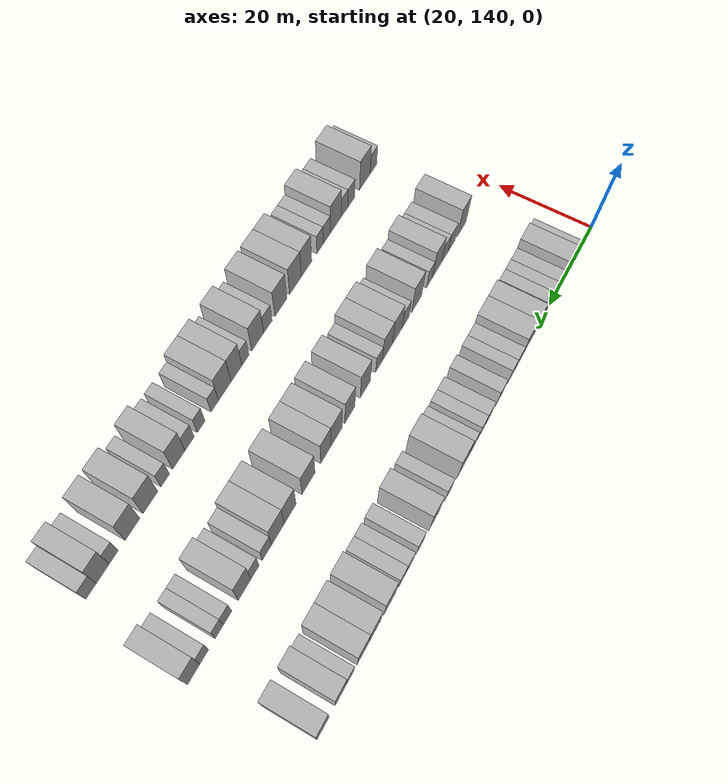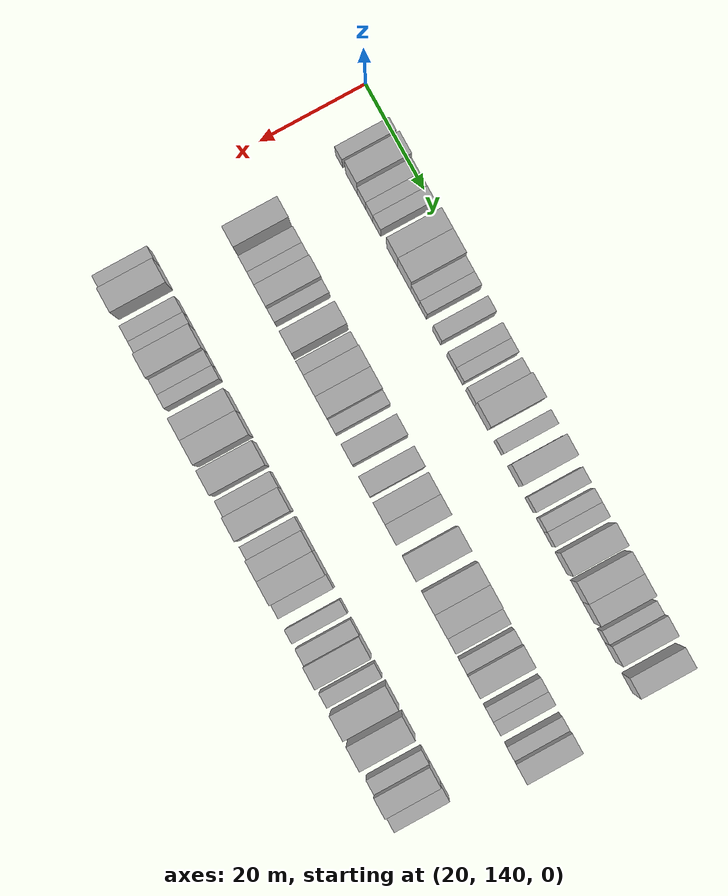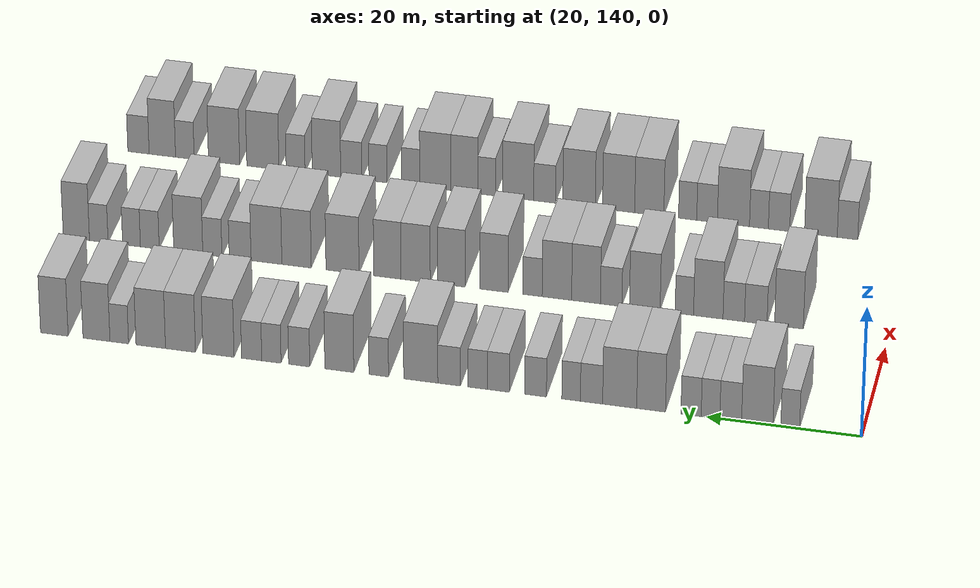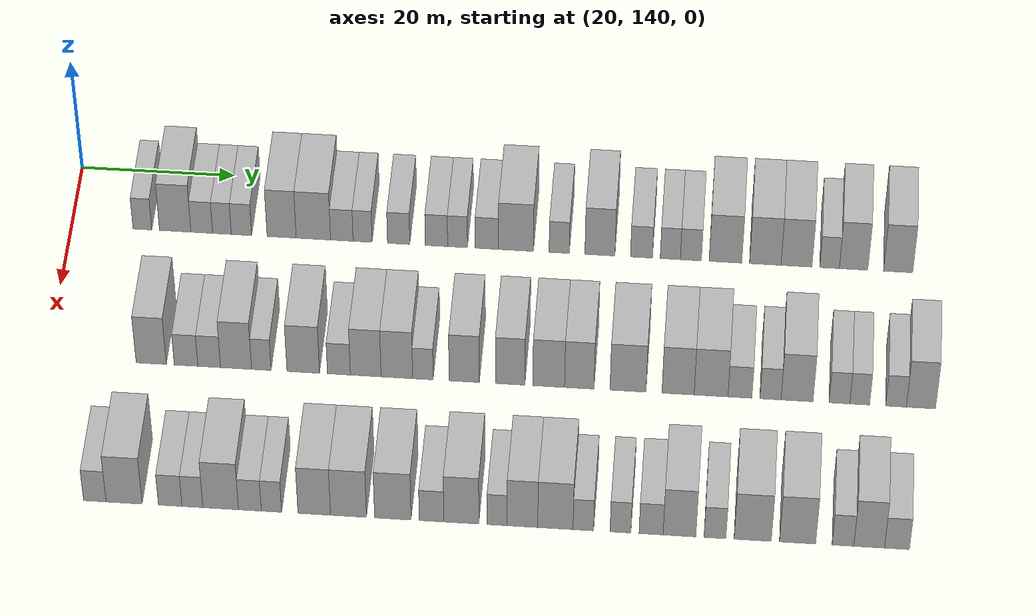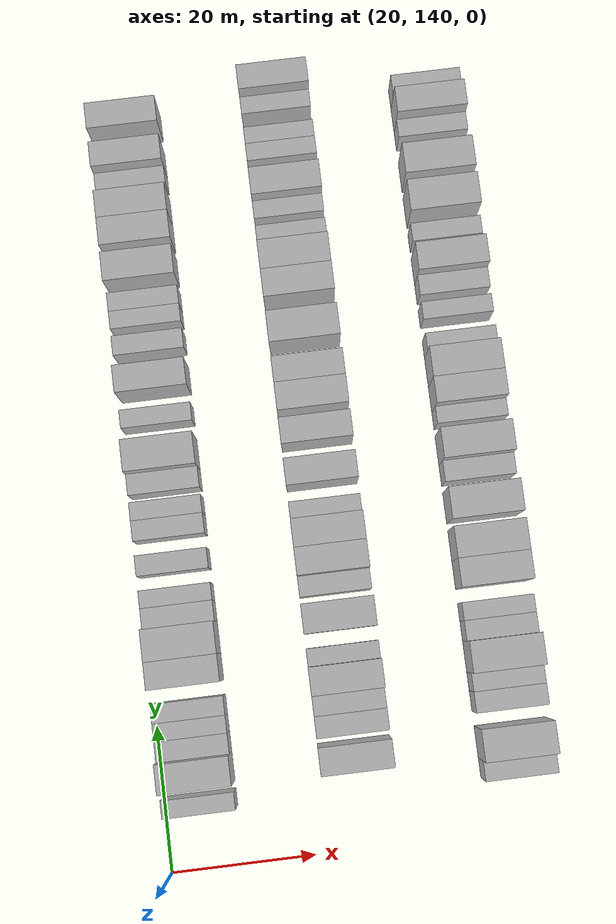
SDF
<sdf version="1.6">
 <world name="default">
  <model name="building_97">
   <static>1</static>
   <pose>25.0000 149.1740 0 0.000000 0.000000 0.000000</pose>
   <link name="link">
    <pose>0 0 3.00 0 0 0</pose>
    <collision name="collision"><geometry><box><size>10.0000 2.4247 6.0000</size></box></geometry></collision>
    <visual name="visual">
     <cast_shadows>0</cast_shadows>
     <geometry><box><size>10.0000 2.4247 6.0000</size></box></geometry>
     <material>
      <script>
       <uri>model://HANNAS_wall/materials/scripts</uri>
       <uri>model://HANNAS_wall/materials/textures</uri>
       <name>vrc/HANNAS_wall</name>
      </script>
     </material>
    </visual>
   </link>
  </model>
  <model name="building_98">
   <static>1</static>
   <pose>25.0000 153.4157 0 0.000000 0.000000 0.000000</pose>
   <link name="link">
    <pose>0 0 4.50 0 0 0</pose>
    <collision name="collision"><geometry><box><size>10.0000 4.0588 9.0000</size></box></geometry></collision>
    <visual name="visual">
     <cast_shadows>0</cast_shadows>
     <geometry><box><size>10.0000 4.0588 9.0000</size></box></geometry>
     <material>
      <script>
       <uri>model://HANNAS_wall/materials/scripts</uri>
       <uri>model://HANNAS_wall/materials/textures</uri>
       <name>vrc/HANNAS_wall</name>
      </script>
     </material>
    </visual>
   </link>
  </model>
  <model name="building_99">
   <static>1</static>
   <pose>25.0000 156.8524 0 0.000000 0.000000 0.000000</pose>
   <link name="link">
    <pose>0 0 3.00 0 0 0</pose>
    <collision name="collision"><geometry><box><size>10.0000 2.8145 6.0000</size></box></geometry></collision>
    <visual name="visual">
     <cast_shadows>0</cast_shadows>
     <geometry><box><size>10.0000 2.8145 6.0000</size></box></geometry>
     <material>
      <script>
       <uri>model://HANNAS_wall/materials/scripts</uri>
       <uri>model://HANNAS_wall/materials/textures</uri>
       <name>vrc/HANNAS_wall</name>
      </script>
     </material>
    </visual>
   </link>
  </model>
  <model name="building_100">
   <static>1</static>
   <pose>25.0000 159.4675 0 0.000000 0.000000 0.000000</pose>
   <link name="link">
    <pose>0 0 3.00 0 0 0</pose>
    <collision name="collision"><geometry><box><size>10.0000 2.4158 6.0000</size></box></geometry></collision>
    <visual name="visual">
     <cast_shadows>0</cast_shadows>
     <geometry><box><size>10.0000 2.4158 6.0000</size></box></geometry>
     <material>
      <script>
       <uri>model://HANNAS_wall/materials/scripts</uri>
       <uri>model://HANNAS_wall/materials/textures</uri>
       <name>vrc/HANNAS_wall</name>
      </script>
     </material>
    </visual>
   </link>
  </model>
  <model name="building_101">
   <static>1</static>
   <pose>25.0000 161.9891 0 0.000000 0.000000 0.000000</pose>
   <link name="link">
    <pose>0 0 3.00 0 0 0</pose>
    <collision name="collision"><geometry><box><size>10.0000 2.6273 6.0000</size></box></geometry></collision>
    <visual name="visual">
     <cast_shadows>0</cast_shadows>
     <geometry><box><size>10.0000 2.6273 6.0000</size></box></geometry>
     <material>
      <script>
       <uri>model://HANNAS_wall/materials/scripts</uri>
       <uri>model://HANNAS_wall/materials/textures</uri>
       <name>vrc/HANNAS_wall</name>
      </script>
     </material>
    </visual>
   </link>
  </model>
  <model name="building_102">
   <static>1</static>
   <pose>25.0000 167.1769 0 0.000000 0.000000 0.000000</pose>
   <link name="link">
    <pose>0 0 4.50 0 0 0</pose>
    <collision name="collision"><geometry><box><size>10.0000 3.7484 9.0000</size></box></geometry></collision>
    <visual name="visual">
     <cast_shadows>0</cast_shadows>
     <geometry><box><size>10.0000 3.7484 9.0000</size></box></geometry>
     <material>
      <script>
       <uri>model://HANNAS_wall/materials/scripts</uri>
       <uri>model://HANNAS_wall/materials/textures</uri>
       <name>vrc/HANNAS_wall</name>
      </script>
     </material>
    </visual>
   </link>
  </model>
  <model name="building_103">
   <static>1</static>
   <pose>25.0000 171.2679 0 0.000000 0.000000 0.000000</pose>
   <link name="link">
    <pose>0 0 4.50 0 0 0</pose>
    <collision name="collision"><geometry><box><size>10.0000 4.4335 9.0000</size></box></geometry></collision>
    <visual name="visual">
     <cast_shadows>0</cast_shadows>
     <geometry><box><size>10.0000 4.4335 9.0000</size></box></geometry>
     <material>
      <script>
       <uri>model://HANNAS_wall/materials/scripts</uri>
       <uri>model://HANNAS_wall/materials/textures</uri>
       <name>vrc/HANNAS_wall</name>
      </script>
     </material>
    </visual>
   </link>
  </model>
  <model name="building_104">
   <static>1</static>
   <pose>25.0000 174.9365 0 0.000000 0.000000 0.000000</pose>
   <link name="link">
    <pose>0 0 3.00 0 0 0</pose>
    <collision name="collision"><geometry><box><size>10.0000 2.9037 6.0000</size></box></geometry></collision>
    <visual name="visual">
     <cast_shadows>0</cast_shadows>
     <geometry><box><size>10.0000 2.9037 6.0000</size></box></geometry>
     <material>
      <script>
       <uri>model://HANNAS_wall/materials/scripts</uri>
       <uri>model://HANNAS_wall/materials/textures</uri>
       <name>vrc/HANNAS_wall</name>
      </script>
     </material>
    </visual>
   </link>
  </model>
  <model name="building_105">
   <static>1</static>
   <pose>25.0000 177.6062 0 0.000000 0.000000 0.000000</pose>
   <link name="link">
    <pose>0 0 3.00 0 0 0</pose>
    <collision name="collision"><geometry><box><size>10.0000 2.4356 6.0000</size></box></geometry></collision>
    <visual name="visual">
     <cast_shadows>0</cast_shadows>
     <geometry><box><size>10.0000 2.4356 6.0000</size></box></geometry>
     <material>
      <script>
       <uri>model://HANNAS_wall/materials/scripts</uri>
       <uri>model://HANNAS_wall/materials/textures</uri>
       <name>vrc/HANNAS_wall</name>
      </script>
     </material>
    </visual>
   </link>
  </model>
  <model name="building_106">
   <static>1</static>
   <pose>25.0000 182.2550 0 0.000000 0.000000 0.000000</pose>
   <link name="link">
    <pose>0 0 3.00 0 0 0</pose>
    <collision name="collision"><geometry><box><size>10.0000 2.8621 6.0000</size></box></geometry></collision>
    <visual name="visual">
     <cast_shadows>0</cast_shadows>
     <geometry><box><size>10.0000 2.8621 6.0000</size></box></geometry>
     <material>
      <script>
       <uri>model://HANNAS_wall/materials/scripts</uri>
       <uri>model://HANNAS_wall/materials/textures</uri>
       <name>vrc/HANNAS_wall</name>
      </script>
     </material>
    </visual>
   </link>
  </model>
  <model name="building_107">
   <static>1</static>
   <pose>25.0000 187.1166 0 0.000000 0.000000 0.000000</pose>
   <link name="link">
    <pose>0 0 3.00 0 0 0</pose>
    <collision name="collision"><geometry><box><size>10.0000 2.8613 6.0000</size></box></geometry></collision>
    <visual name="visual">
     <cast_shadows>0</cast_shadows>
     <geometry><box><size>10.0000 2.8613 6.0000</size></box></geometry>
     <material>
      <script>
       <uri>model://HANNAS_wall/materials/scripts</uri>
       <uri>model://HANNAS_wall/materials/textures</uri>
       <name>vrc/HANNAS_wall</name>
      </script>
     </material>
    </visual>
   </link>
  </model>
  <model name="building_108">
   <static>1</static>
   <pose>25.0000 189.8250 0 0.000000 0.000000 0.000000</pose>
   <link name="link">
    <pose>0 0 3.00 0 0 0</pose>
    <collision name="collision"><geometry><box><size>10.0000 2.5555 6.0000</size></box></geometry></collision>
    <visual name="visual">
     <cast_shadows>0</cast_shadows>
     <geometry><box><size>10.0000 2.5555 6.0000</size></box></geometry>
     <material>
      <script>
       <uri>model://HANNAS_wall/materials/scripts</uri>
       <uri>model://HANNAS_wall/materials/textures</uri>
       <name>vrc/HANNAS_wall</name>
      </script>
     </material>
    </visual>
   </link>
  </model>
  <model name="building_109">
   <static>1</static>
   <pose>25.0000 193.5967 0 0.000000 0.000000 0.000000</pose>
   <link name="link">
    <pose>0 0 3.00 0 0 0</pose>
    <collision name="collision"><geometry><box><size>10.0000 2.9880 6.0000</size></box></geometry></collision>
    <visual name="visual">
     <cast_shadows>0</cast_shadows>
     <geometry><box><size>10.0000 2.9880 6.0000</size></box></geometry>
     <material>
      <script>
       <uri>model://HANNAS_wall/materials/scripts</uri>
       <uri>model://HANNAS_wall/materials/textures</uri>
       <name>vrc/HANNAS_wall</name>
      </script>
     </material>
    </visual>
   </link>
  </model>
  <model name="building_110">
   <static>1</static>
   <pose>25.0000 197.3390 0 0.000000 0.000000 0.000000</pose>
   <link name="link">
    <pose>0 0 4.50 0 0 0</pose>
    <collision name="collision"><geometry><box><size>10.0000 4.4966 9.0000</size></box></geometry></collision>
    <visual name="visual">
     <cast_shadows>0</cast_shadows>
     <geometry><box><size>10.0000 4.4966 9.0000</size></box></geometry>
     <material>
      <script>
       <uri>model://HANNAS_wall/materials/scripts</uri>
       <uri>model://HANNAS_wall/materials/textures</uri>
       <name>vrc/HANNAS_wall</name>
      </script>
     </material>
    </visual>
   </link>
  </model>
  <model name="building_111">
   <static>1</static>
   <pose>25.0000 202.8858 0 0.000000 0.000000 0.000000</pose>
   <link name="link">
    <pose>0 0 3.00 0 0 0</pose>
    <collision name="collision"><geometry><box><size>10.0000 2.5969 6.0000</size></box></geometry></collision>
    <visual name="visual">
     <cast_shadows>0</cast_shadows>
     <geometry><box><size>10.0000 2.5969 6.0000</size></box></geometry>
     <material>
      <script>
       <uri>model://HANNAS_wall/materials/scripts</uri>
       <uri>model://HANNAS_wall/materials/textures</uri>
       <name>vrc/HANNAS_wall</name>
      </script>
     </material>
    </visual>
   </link>
  </model>
  <model name="building_112">
   <static>1</static>
   <pose>25.0000 208.1052 0 0.000000 0.000000 0.000000</pose>
   <link name="link">
    <pose>0 0 4.50 0 0 0</pose>
    <collision name="collision"><geometry><box><size>10.0000 3.8420 9.0000</size></box></geometry></collision>
    <visual name="visual">
     <cast_shadows>0</cast_shadows>
     <geometry><box><size>10.0000 3.8420 9.0000</size></box></geometry>
     <material>
      <script>
       <uri>model://HANNAS_wall/materials/scripts</uri>
       <uri>model://HANNAS_wall/materials/textures</uri>
       <name>vrc/HANNAS_wall</name>
      </script>
     </material>
    </visual>
   </link>
  </model>
  <model name="building_113">
   <static>1</static>
   <pose>25.0000 213.4318 0 0.000000 0.000000 0.000000</pose>
   <link name="link">
    <pose>0 0 3.00 0 0 0</pose>
    <collision name="collision"><geometry><box><size>10.0000 2.8112 6.0000</size></box></geometry></collision>
    <visual name="visual">
     <cast_shadows>0</cast_shadows>
     <geometry><box><size>10.0000 2.8112 6.0000</size></box></geometry>
     <material>
      <script>
       <uri>model://HANNAS_wall/materials/scripts</uri>
       <uri>model://HANNAS_wall/materials/textures</uri>
       <name>vrc/HANNAS_wall</name>
      </script>
     </material>
    </visual>
   </link>
  </model>
  <model name="building_114">
   <static>1</static>
   <pose>25.0000 217.1213 0 0.000000 0.000000 0.000000</pose>
   <link name="link">
    <pose>0 0 3.00 0 0 0</pose>
    <collision name="collision"><geometry><box><size>10.0000 2.5677 6.0000</size></box></geometry></collision>
    <visual name="visual">
     <cast_shadows>0</cast_shadows>
     <geometry><box><size>10.0000 2.5677 6.0000</size></box></geometry>
     <material>
      <script>
       <uri>model://HANNAS_wall/materials/scripts</uri>
       <uri>model://HANNAS_wall/materials/textures</uri>
       <name>vrc/HANNAS_wall</name>
      </script>
     </material>
    </visual>
   </link>
  </model>
  <model name="building_115">
   <static>1</static>
   <pose>25.0000 219.7483 0 0.000000 0.000000 0.000000</pose>
   <link name="link">
    <pose>0 0 3.00 0 0 0</pose>
    <collision name="collision"><geometry><box><size>10.0000 2.6865 6.0000</size></box></geometry></collision>
    <visual name="visual">
     <cast_shadows>0</cast_shadows>
     <geometry><box><size>10.0000 2.6865 6.0000</size></box></geometry>
     <material>
      <script>
       <uri>model://HANNAS_wall/materials/scripts</uri>
       <uri>model://HANNAS_wall/materials/textures</uri>
       <name>vrc/HANNAS_wall</name>
      </script>
     </material>
    </visual>
   </link>
  </model>
  <model name="building_116">
   <static>1</static>
   <pose>25.0000 224.1711 0 0.000000 0.000000 0.000000</pose>
   <link name="link">
    <pose>0 0 4.50 0 0 0</pose>
    <collision name="collision"><geometry><box><size>10.0000 4.1591 9.0000</size></box></geometry></collision>
    <visual name="visual">
     <cast_shadows>0</cast_shadows>
     <geometry><box><size>10.0000 4.1591 9.0000</size></box></geometry>
     <material>
      <script>
       <uri>model://HANNAS_wall/materials/scripts</uri>
       <uri>model://HANNAS_wall/materials/textures</uri>
       <name>vrc/HANNAS_wall</name>
      </script>
     </material>
    </visual>
   </link>
  </model>
  <model name="building_117">
   <static>1</static>
   <pose>25.0000 229.2559 0 0.000000 0.000000 0.000000</pose>
   <link name="link">
    <pose>0 0 4.50 0 0 0</pose>
    <collision name="collision"><geometry><box><size>10.0000 4.0103 9.0000</size></box></geometry></collision>
    <visual name="visual">
     <cast_shadows>0</cast_shadows>
     <geometry><box><size>10.0000 4.0103 9.0000</size></box></geometry>
     <material>
      <script>
       <uri>model://HANNAS_wall/materials/scripts</uri>
       <uri>model://HANNAS_wall/materials/textures</uri>
       <name>vrc/HANNAS_wall</name>
      </script>
     </material>
    </visual>
   </link>
  </model>
  <model name="building_118">
   <static>1</static>
   <pose>25.0000 233.2376 0 0.000000 0.000000 0.000000</pose>
   <link name="link">
    <pose>0 0 4.50 0 0 0</pose>
    <collision name="collision"><geometry><box><size>10.0000 3.9533 9.0000</size></box></geometry></collision>
    <visual name="visual">
     <cast_shadows>0</cast_shadows>
     <geometry><box><size>10.0000 3.9533 9.0000</size></box></geometry>
     <material>
      <script>
       <uri>model://HANNAS_wall/materials/scripts</uri>
       <uri>model://HANNAS_wall/materials/textures</uri>
       <name>vrc/HANNAS_wall</name>
      </script>
     </material>
    </visual>
   </link>
  </model>
  <model name="building_119">
   <static>1</static>
   <pose>25.0000 237.4636 0 0.000000 0.000000 0.000000</pose>
   <link name="link">
    <pose>0 0 3.00 0 0 0</pose>
    <collision name="collision"><geometry><box><size>10.0000 2.4986 6.0000</size></box></geometry></collision>
    <visual name="visual">
     <cast_shadows>0</cast_shadows>
     <geometry><box><size>10.0000 2.4986 6.0000</size></box></geometry>
     <material>
      <script>
       <uri>model://HANNAS_wall/materials/scripts</uri>
       <uri>model://HANNAS_wall/materials/textures</uri>
       <name>vrc/HANNAS_wall</name>
      </script>
     </material>
    </visual>
   </link>
  </model>
  <model name="building_120">
   <static>1</static>
   <pose>25.0000 240.5267 0 0.000000 0.000000 0.000000</pose>
   <link name="link">
    <pose>0 0 4.50 0 0 0</pose>
    <collision name="collision"><geometry><box><size>10.0000 3.6276 9.0000</size></box></geometry></collision>
    <visual name="visual">
     <cast_shadows>0</cast_shadows>
     <geometry><box><size>10.0000 3.6276 9.0000</size></box></geometry>
     <material>
      <script>
       <uri>model://HANNAS_wall/materials/scripts</uri>
       <uri>model://HANNAS_wall/materials/textures</uri>
       <name>vrc/HANNAS_wall</name>
      </script>
     </material>
    </visual>
   </link>
  </model>
  <model name="building_121">
   <static>1</static>
   <pose>25.0000 246.1975 0 0.000000 0.000000 0.000000</pose>
   <link name="link">
    <pose>0 0 4.50 0 0 0</pose>
    <collision name="collision"><geometry><box><size>10.0000 3.7140 9.0000</size></box></geometry></collision>
    <visual name="visual">
     <cast_shadows>0</cast_shadows>
     <geometry><box><size>10.0000 3.7140 9.0000</size></box></geometry>
     <material>
      <script>
       <uri>model://HANNAS_wall/materials/scripts</uri>
       <uri>model://HANNAS_wall/materials/textures</uri>
       <name>vrc/HANNAS_wall</name>
      </script>
     </material>
    </visual>
   </link>
  </model>
  <model name="building_224">
   <static>1</static>
   <pose>47.0000 153.0991 0 0.000000 0.000000 0.000000</pose>
   <link name="link">
    <pose>0 0 4.50 0 0 0</pose>
    <collision name="collision"><geometry><box><size>10.0000 3.8001 9.0000</size></box></geometry></collision>
    <visual name="visual">
     <cast_shadows>0</cast_shadows>
     <geometry><box><size>10.0000 3.8001 9.0000</size></box></geometry>
     <material>
      <script>
       <uri>model://HANNAS_wall/materials/scripts</uri>
       <uri>model://HANNAS_wall/materials/textures</uri>
       <name>vrc/HANNAS_wall</name>
      </script>
     </material>
    </visual>
   </link>
  </model>
  <model name="building_225">
   <static>1</static>
   <pose>47.0000 157.4856 0 0.000000 0.000000 0.000000</pose>
   <link name="link">
    <pose>0 0 3.00 0 0 0</pose>
    <collision name="collision"><geometry><box><size>10.0000 2.9729 6.0000</size></box></geometry></collision>
    <visual name="visual">
     <cast_shadows>0</cast_shadows>
     <geometry><box><size>10.0000 2.9729 6.0000</size></box></geometry>
     <material>
      <script>
       <uri>model://HANNAS_wall/materials/scripts</uri>
       <uri>model://HANNAS_wall/materials/textures</uri>
       <name>vrc/HANNAS_wall</name>
      </script>
     </material>
    </visual>
   </link>
  </model>
  <model name="building_226">
   <static>1</static>
   <pose>47.0000 160.3993 0 0.000000 0.000000 0.000000</pose>
   <link name="link">
    <pose>0 0 3.00 0 0 0</pose>
    <collision name="collision"><geometry><box><size>10.0000 2.8544 6.0000</size></box></geometry></collision>
    <visual name="visual">
     <cast_shadows>0</cast_shadows>
     <geometry><box><size>10.0000 2.8544 6.0000</size></box></geometry>
     <material>
      <script>
       <uri>model://HANNAS_wall/materials/scripts</uri>
       <uri>model://HANNAS_wall/materials/textures</uri>
       <name>vrc/HANNAS_wall</name>
      </script>
     </material>
    </visual>
   </link>
  </model>
  <model name="building_227">
   <static>1</static>
   <pose>47.0000 163.7808 0 0.000000 0.000000 0.000000</pose>
   <link name="link">
    <pose>0 0 4.50 0 0 0</pose>
    <collision name="collision"><geometry><box><size>10.0000 3.9086 9.0000</size></box></geometry></collision>
    <visual name="visual">
     <cast_shadows>0</cast_shadows>
     <geometry><box><size>10.0000 3.9086 9.0000</size></box></geometry>
     <material>
      <script>
       <uri>model://HANNAS_wall/materials/scripts</uri>
       <uri>model://HANNAS_wall/materials/textures</uri>
       <name>vrc/HANNAS_wall</name>
      </script>
     </material>
    </visual>
   </link>
  </model>
  <model name="building_228">
   <static>1</static>
   <pose>47.0000 166.9621 0 0.000000 0.000000 0.000000</pose>
   <link name="link">
    <pose>0 0 3.00 0 0 0</pose>
    <collision name="collision"><geometry><box><size>10.0000 2.4541 6.0000</size></box></geometry></collision>
    <visual name="visual">
     <cast_shadows>0</cast_shadows>
     <geometry><box><size>10.0000 2.4541 6.0000</size></box></geometry>
     <material>
      <script>
       <uri>model://HANNAS_wall/materials/scripts</uri>
       <uri>model://HANNAS_wall/materials/textures</uri>
       <name>vrc/HANNAS_wall</name>
      </script>
     </material>
    </visual>
   </link>
  </model>
  <model name="building_229">
   <static>1</static>
   <pose>47.0000 172.2316 0 0.000000 0.000000 0.000000</pose>
   <link name="link">
    <pose>0 0 4.50 0 0 0</pose>
    <collision name="collision"><geometry><box><size>10.0000 4.0848 9.0000</size></box></geometry></collision>
    <visual name="visual">
     <cast_shadows>0</cast_shadows>
     <geometry><box><size>10.0000 4.0848 9.0000</size></box></geometry>
     <material>
      <script>
       <uri>model://HANNAS_wall/materials/scripts</uri>
       <uri>model://HANNAS_wall/materials/textures</uri>
       <name>vrc/HANNAS_wall</name>
      </script>
     </material>
    </visual>
   </link>
  </model>
  <model name="building_230">
   <static>1</static>
   <pose>47.0000 176.7087 0 0.000000 0.000000 0.000000</pose>
   <link name="link">
    <pose>0 0 3.00 0 0 0</pose>
    <collision name="collision"><geometry><box><size>10.0000 2.8695 6.0000</size></box></geometry></collision>
    <visual name="visual">
     <cast_shadows>0</cast_shadows>
     <geometry><box><size>10.0000 2.8695 6.0000</size></box></geometry>
     <material>
      <script>
       <uri>model://HANNAS_wall/materials/scripts</uri>
       <uri>model://HANNAS_wall/materials/textures</uri>
       <name>vrc/HANNAS_wall</name>
      </script>
     </material>
    </visual>
   </link>
  </model>
  <model name="building_231">
   <static>1</static>
   <pose>47.0000 180.0706 0 0.000000 0.000000 0.000000</pose>
   <link name="link">
    <pose>0 0 4.50 0 0 0</pose>
    <collision name="collision"><geometry><box><size>10.0000 3.8542 9.0000</size></box></geometry></collision>
    <visual name="visual">
     <cast_shadows>0</cast_shadows>
     <geometry><box><size>10.0000 3.8542 9.0000</size></box></geometry>
     <material>
      <script>
       <uri>model://HANNAS_wall/materials/scripts</uri>
       <uri>model://HANNAS_wall/materials/textures</uri>
       <name>vrc/HANNAS_wall</name>
      </script>
     </material>
    </visual>
   </link>
  </model>
  <model name="building_232">
   <static>1</static>
   <pose>47.0000 183.9713 0 0.000000 0.000000 0.000000</pose>
   <link name="link">
    <pose>0 0 4.50 0 0 0</pose>
    <collision name="collision"><geometry><box><size>10.0000 3.9472 9.0000</size></box></geometry></collision>
    <visual name="visual">
     <cast_shadows>0</cast_shadows>
     <geometry><box><size>10.0000 3.9472 9.0000</size></box></geometry>
     <material>
      <script>
       <uri>model://HANNAS_wall/materials/scripts</uri>
       <uri>model://HANNAS_wall/materials/textures</uri>
       <name>vrc/HANNAS_wall</name>
      </script>
     </material>
    </visual>
   </link>
  </model>
  <model name="building_233">
   <static>1</static>
   <pose>47.0000 187.2362 0 0.000000 0.000000 0.000000</pose>
   <link name="link">
    <pose>0 0 3.00 0 0 0</pose>
    <collision name="collision"><geometry><box><size>10.0000 2.5825 6.0000</size></box></geometry></collision>
    <visual name="visual">
     <cast_shadows>0</cast_shadows>
     <geometry><box><size>10.0000 2.5825 6.0000</size></box></geometry>
     <material>
      <script>
       <uri>model://HANNAS_wall/materials/scripts</uri>
       <uri>model://HANNAS_wall/materials/textures</uri>
       <name>vrc/HANNAS_wall</name>
      </script>
     </material>
    </visual>
   </link>
  </model>
  <model name="building_234">
   <static>1</static>
   <pose>47.0000 192.4200 0 0.000000 0.000000 0.000000</pose>
   <link name="link">
    <pose>0 0 4.50 0 0 0</pose>
    <collision name="collision"><geometry><box><size>10.0000 3.7851 9.0000</size></box></geometry></collision>
    <visual name="visual">
     <cast_shadows>0</cast_shadows>
     <geometry><box><size>10.0000 3.7851 9.0000</size></box></geometry>
     <material>
      <script>
       <uri>model://HANNAS_wall/materials/scripts</uri>
       <uri>model://HANNAS_wall/materials/textures</uri>
       <name>vrc/HANNAS_wall</name>
      </script>
     </material>
    </visual>
   </link>
  </model>
  <model name="building_235">
   <static>1</static>
   <pose>47.0000 198.1591 0 0.000000 0.000000 0.000000</pose>
   <link name="link">
    <pose>0 0 4.50 0 0 0</pose>
    <collision name="collision"><geometry><box><size>10.0000 3.6932 9.0000</size></box></geometry></collision>
    <visual name="visual">
     <cast_shadows>0</cast_shadows>
     <geometry><box><size>10.0000 3.6932 9.0000</size></box></geometry>
     <material>
      <script>
       <uri>model://HANNAS_wall/materials/scripts</uri>
       <uri>model://HANNAS_wall/materials/textures</uri>
       <name>vrc/HANNAS_wall</name>
      </script>
     </material>
    </visual>
   </link>
  </model>
  <model name="building_236">
   <static>1</static>
   <pose>47.0000 202.9847 0 0.000000 0.000000 0.000000</pose>
   <link name="link">
    <pose>0 0 4.50 0 0 0</pose>
    <collision name="collision"><geometry><box><size>10.0000 3.9581 9.0000</size></box></geometry></collision>
    <visual name="visual">
     <cast_shadows>0</cast_shadows>
     <geometry><box><size>10.0000 3.9581 9.0000</size></box></geometry>
     <material>
      <script>
       <uri>model://HANNAS_wall/materials/scripts</uri>
       <uri>model://HANNAS_wall/materials/textures</uri>
       <name>vrc/HANNAS_wall</name>
      </script>
     </material>
    </visual>
   </link>
  </model>
  <model name="building_237">
   <static>1</static>
   <pose>47.0000 206.8029 0 0.000000 0.000000 0.000000</pose>
   <link name="link">
    <pose>0 0 4.50 0 0 0</pose>
    <collision name="collision"><geometry><box><size>10.0000 3.6783 9.0000</size></box></geometry></collision>
    <visual name="visual">
     <cast_shadows>0</cast_shadows>
     <geometry><box><size>10.0000 3.6783 9.0000</size></box></geometry>
     <material>
      <script>
       <uri>model://HANNAS_wall/materials/scripts</uri>
       <uri>model://HANNAS_wall/materials/textures</uri>
       <name>vrc/HANNAS_wall</name>
      </script>
     </material>
    </visual>
   </link>
  </model>
  <model name="building_238">
   <static>1</static>
   <pose>47.0000 212.8858 0 0.000000 0.000000 0.000000</pose>
   <link name="link">
    <pose>0 0 4.50 0 0 0</pose>
    <collision name="collision"><geometry><box><size>10.0000 4.4875 9.0000</size></box></geometry></collision>
    <visual name="visual">
     <cast_shadows>0</cast_shadows>
     <geometry><box><size>10.0000 4.4875 9.0000</size></box></geometry>
     <material>
      <script>
       <uri>model://HANNAS_wall/materials/scripts</uri>
       <uri>model://HANNAS_wall/materials/textures</uri>
       <name>vrc/HANNAS_wall</name>
      </script>
     </material>
    </visual>
   </link>
  </model>
  <model name="building_239">
   <static>1</static>
   <pose>47.0000 219.1300 0 0.000000 0.000000 0.000000</pose>
   <link name="link">
    <pose>0 0 4.50 0 0 0</pose>
    <collision name="collision"><geometry><box><size>10.0000 4.0009 9.0000</size></box></geometry></collision>
    <visual name="visual">
     <cast_shadows>0</cast_shadows>
     <geometry><box><size>10.0000 4.0009 9.0000</size></box></geometry>
     <material>
      <script>
       <uri>model://HANNAS_wall/materials/scripts</uri>
       <uri>model://HANNAS_wall/materials/textures</uri>
       <name>vrc/HANNAS_wall</name>
      </script>
     </material>
    </visual>
   </link>
  </model>
  <model name="building_240">
   <static>1</static>
   <pose>47.0000 223.2328 0 0.000000 0.000000 0.000000</pose>
   <link name="link">
    <pose>0 0 4.50 0 0 0</pose>
    <collision name="collision"><geometry><box><size>10.0000 4.2047 9.0000</size></box></geometry></collision>
    <visual name="visual">
     <cast_shadows>0</cast_shadows>
     <geometry><box><size>10.0000 4.2047 9.0000</size></box></geometry>
     <material>
      <script>
       <uri>model://HANNAS_wall/materials/scripts</uri>
       <uri>model://HANNAS_wall/materials/textures</uri>
       <name>vrc/HANNAS_wall</name>
      </script>
     </material>
    </visual>
   </link>
  </model>
  <model name="building_241">
   <static>1</static>
   <pose>47.0000 226.8242 0 0.000000 0.000000 0.000000</pose>
   <link name="link">
    <pose>0 0 3.00 0 0 0</pose>
    <collision name="collision"><geometry><box><size>10.0000 2.9781 6.0000</size></box></geometry></collision>
    <visual name="visual">
     <cast_shadows>0</cast_shadows>
     <geometry><box><size>10.0000 2.9781 6.0000</size></box></geometry>
     <material>
      <script>
       <uri>model://HANNAS_wall/materials/scripts</uri>
       <uri>model://HANNAS_wall/materials/textures</uri>
       <name>vrc/HANNAS_wall</name>
      </script>
     </material>
    </visual>
   </link>
  </model>
  <model name="building_242">
   <static>1</static>
   <pose>47.0000 230.6223 0 0.000000 0.000000 0.000000</pose>
   <link name="link">
    <pose>0 0 3.00 0 0 0</pose>
    <collision name="collision"><geometry><box><size>10.0000 2.6182 6.0000</size></box></geometry></collision>
    <visual name="visual">
     <cast_shadows>0</cast_shadows>
     <geometry><box><size>10.0000 2.6182 6.0000</size></box></geometry>
     <material>
      <script>
       <uri>model://HANNAS_wall/materials/scripts</uri>
       <uri>model://HANNAS_wall/materials/textures</uri>
       <name>vrc/HANNAS_wall</name>
      </script>
     </material>
    </visual>
   </link>
  </model>
  <model name="building_243">
   <static>1</static>
   <pose>47.0000 233.9207 0 0.000000 0.000000 0.000000</pose>
   <link name="link">
    <pose>0 0 4.50 0 0 0</pose>
    <collision name="collision"><geometry><box><size>10.0000 3.9786 9.0000</size></box></geometry></collision>
    <visual name="visual">
     <cast_shadows>0</cast_shadows>
     <geometry><box><size>10.0000 3.9786 9.0000</size></box></geometry>
     <material>
      <script>
       <uri>model://HANNAS_wall/materials/scripts</uri>
       <uri>model://HANNAS_wall/materials/textures</uri>
       <name>vrc/HANNAS_wall</name>
      </script>
     </material>
    </visual>
   </link>
  </model>
  <model name="building_244">
   <static>1</static>
   <pose>47.0000 239.2005 0 0.000000 0.000000 0.000000</pose>
   <link name="link">
    <pose>0 0 3.00 0 0 0</pose>
    <collision name="collision"><geometry><box><size>10.0000 2.5810 6.0000</size></box></geometry></collision>
    <visual name="visual">
     <cast_shadows>0</cast_shadows>
     <geometry><box><size>10.0000 2.5810 6.0000</size></box></geometry>
     <material>
      <script>
       <uri>model://HANNAS_wall/materials/scripts</uri>
       <uri>model://HANNAS_wall/materials/textures</uri>
       <name>vrc/HANNAS_wall</name>
      </script>
     </material>
    </visual>
   </link>
  </model>
  <model name="building_245">
   <static>1</static>
   <pose>47.0000 241.7146 0 0.000000 0.000000 0.000000</pose>
   <link name="link">
    <pose>0 0 3.00 0 0 0</pose>
    <collision name="collision"><geometry><box><size>10.0000 2.4471 6.0000</size></box></geometry></collision>
    <visual name="visual">
     <cast_shadows>0</cast_shadows>
     <geometry><box><size>10.0000 2.4471 6.0000</size></box></geometry>
     <material>
      <script>
       <uri>model://HANNAS_wall/materials/scripts</uri>
       <uri>model://HANNAS_wall/materials/textures</uri>
       <name>vrc/HANNAS_wall</name>
      </script>
     </material>
    </visual>
   </link>
  </model>
  <model name="building_246">
   <static>1</static>
   <pose>47.0000 246.2211 0 0.000000 0.000000 0.000000</pose>
   <link name="link">
    <pose>0 0 3.00 0 0 0</pose>
    <collision name="collision"><geometry><box><size>10.0000 2.5660 6.0000</size></box></geometry></collision>
    <visual name="visual">
     <cast_shadows>0</cast_shadows>
     <geometry><box><size>10.0000 2.5660 6.0000</size></box></geometry>
     <material>
      <script>
       <uri>model://HANNAS_wall/materials/scripts</uri>
       <uri>model://HANNAS_wall/materials/textures</uri>
       <name>vrc/HANNAS_wall</name>
      </script>
     </material>
    </visual>
   </link>
  </model>
  <model name="building_247">
   <static>1</static>
   <pose>47.0000 249.3078 0 0.000000 0.000000 0.000000</pose>
   <link name="link">
    <pose>0 0 4.50 0 0 0</pose>
    <collision name="collision"><geometry><box><size>10.0000 3.6072 9.0000</size></box></geometry></collision>
    <visual name="visual">
     <cast_shadows>0</cast_shadows>
     <geometry><box><size>10.0000 3.6072 9.0000</size></box></geometry>
     <material>
      <script>
       <uri>model://HANNAS_wall/materials/scripts</uri>
       <uri>model://HANNAS_wall/materials/textures</uri>
       <name>vrc/HANNAS_wall</name>
      </script>
     </material>
    </visual>
   </link>
  </model>
  <model name="building_345">
   <static>1</static>
   <pose>69.0000 148.9584 0 0.000000 0.000000 0.000000</pose>
   <link name="link">
    <pose>0 0 3.00 0 0 0</pose>
    <collision name="collision"><geometry><box><size>10.0000 2.7682 6.0000</size></box></geometry></collision>
    <visual name="visual">
     <cast_shadows>0</cast_shadows>
     <geometry><box><size>10.0000 2.7682 6.0000</size></box></geometry>
     <material>
      <script>
       <uri>model://HANNAS_wall/materials/scripts</uri>
       <uri>model://HANNAS_wall/materials/textures</uri>
       <name>vrc/HANNAS_wall</name>
      </script>
     </material>
    </visual>
   </link>
  </model>
  <model name="building_346">
   <static>1</static>
   <pose>69.0000 152.5544 0 0.000000 0.000000 0.000000</pose>
   <link name="link">
    <pose>0 0 4.50 0 0 0</pose>
    <collision name="collision"><geometry><box><size>10.0000 4.4237 9.0000</size></box></geometry></collision>
    <visual name="visual">
     <cast_shadows>0</cast_shadows>
     <geometry><box><size>10.0000 4.4237 9.0000</size></box></geometry>
     <material>
      <script>
       <uri>model://HANNAS_wall/materials/scripts</uri>
       <uri>model://HANNAS_wall/materials/textures</uri>
       <name>vrc/HANNAS_wall</name>
      </script>
     </material>
    </visual>
   </link>
  </model>
  <model name="building_347">
   <static>1</static>
   <pose>69.0000 158.2101 0 0.000000 0.000000 0.000000</pose>
   <link name="link">
    <pose>0 0 3.00 0 0 0</pose>
    <collision name="collision"><geometry><box><size>10.0000 2.8877 6.0000</size></box></geometry></collision>
    <visual name="visual">
     <cast_shadows>0</cast_shadows>
     <geometry><box><size>10.0000 2.8877 6.0000</size></box></geometry>
     <material>
      <script>
       <uri>model://HANNAS_wall/materials/scripts</uri>
       <uri>model://HANNAS_wall/materials/textures</uri>
       <name>vrc/HANNAS_wall</name>
      </script>
     </material>
    </visual>
   </link>
  </model>
  <model name="building_348">
   <static>1</static>
   <pose>69.0000 160.9320 0 0.000000 0.000000 0.000000</pose>
   <link name="link">
    <pose>0 0 3.00 0 0 0</pose>
    <collision name="collision"><geometry><box><size>10.0000 2.5561 6.0000</size></box></geometry></collision>
    <visual name="visual">
     <cast_shadows>0</cast_shadows>
     <geometry><box><size>10.0000 2.5561 6.0000</size></box></geometry>
     <material>
      <script>
       <uri>model://HANNAS_wall/materials/scripts</uri>
       <uri>model://HANNAS_wall/materials/textures</uri>
       <name>vrc/HANNAS_wall</name>
      </script>
     </material>
    </visual>
   </link>
  </model>
  <model name="building_349">
   <static>1</static>
   <pose>69.0000 164.3908 0 0.000000 0.000000 0.000000</pose>
   <link name="link">
    <pose>0 0 4.50 0 0 0</pose>
    <collision name="collision"><geometry><box><size>10.0000 4.3616 9.0000</size></box></geometry></collision>
    <visual name="visual">
     <cast_shadows>0</cast_shadows>
     <geometry><box><size>10.0000 4.3616 9.0000</size></box></geometry>
     <material>
      <script>
       <uri>model://HANNAS_wall/materials/scripts</uri>
       <uri>model://HANNAS_wall/materials/textures</uri>
       <name>vrc/HANNAS_wall</name>
      </script>
     </material>
    </visual>
   </link>
  </model>
  <model name="building_350">
   <static>1</static>
   <pose>69.0000 167.9734 0 0.000000 0.000000 0.000000</pose>
   <link name="link">
    <pose>0 0 3.00 0 0 0</pose>
    <collision name="collision"><geometry><box><size>10.0000 2.8035 6.0000</size></box></geometry></collision>
    <visual name="visual">
     <cast_shadows>0</cast_shadows>
     <geometry><box><size>10.0000 2.8035 6.0000</size></box></geometry>
     <material>
      <script>
       <uri>model://HANNAS_wall/materials/scripts</uri>
       <uri>model://HANNAS_wall/materials/textures</uri>
       <name>vrc/HANNAS_wall</name>
      </script>
     </material>
    </visual>
   </link>
  </model>
  <model name="building_351">
   <static>1</static>
   <pose>69.0000 170.6152 0 0.000000 0.000000 0.000000</pose>
   <link name="link">
    <pose>0 0 3.00 0 0 0</pose>
    <collision name="collision"><geometry><box><size>10.0000 2.4800 6.0000</size></box></geometry></collision>
    <visual name="visual">
     <cast_shadows>0</cast_shadows>
     <geometry><box><size>10.0000 2.4800 6.0000</size></box></geometry>
     <material>
      <script>
       <uri>model://HANNAS_wall/materials/scripts</uri>
       <uri>model://HANNAS_wall/materials/textures</uri>
       <name>vrc/HANNAS_wall</name>
      </script>
     </material>
    </visual>
   </link>
  </model>
  <model name="building_352">
   <static>1</static>
   <pose>69.0000 175.8461 0 0.000000 0.000000 0.000000</pose>
   <link name="link">
    <pose>0 0 4.50 0 0 0</pose>
    <collision name="collision"><geometry><box><size>10.0000 3.9820 9.0000</size></box></geometry></collision>
    <visual name="visual">
     <cast_shadows>0</cast_shadows>
     <geometry><box><size>10.0000 3.9820 9.0000</size></box></geometry>
     <material>
      <script>
       <uri>model://HANNAS_wall/materials/scripts</uri>
       <uri>model://HANNAS_wall/materials/textures</uri>
       <name>vrc/HANNAS_wall</name>
      </script>
     </material>
    </visual>
   </link>
  </model>
  <model name="building_353">
   <static>1</static>
   <pose>69.0000 180.0297 0 0.000000 0.000000 0.000000</pose>
   <link name="link">
    <pose>0 0 4.50 0 0 0</pose>
    <collision name="collision"><geometry><box><size>10.0000 4.3851 9.0000</size></box></geometry></collision>
    <visual name="visual">
     <cast_shadows>0</cast_shadows>
     <geometry><box><size>10.0000 4.3851 9.0000</size></box></geometry>
     <material>
      <script>
       <uri>model://HANNAS_wall/materials/scripts</uri>
       <uri>model://HANNAS_wall/materials/textures</uri>
       <name>vrc/HANNAS_wall</name>
      </script>
     </material>
    </visual>
   </link>
  </model>
  <model name="building_354">
   <static>1</static>
   <pose>69.0000 185.4454 0 0.000000 0.000000 0.000000</pose>
   <link name="link">
    <pose>0 0 4.50 0 0 0</pose>
    <collision name="collision"><geometry><box><size>10.0000 4.4464 9.0000</size></box></geometry></collision>
    <visual name="visual">
     <cast_shadows>0</cast_shadows>
     <geometry><box><size>10.0000 4.4464 9.0000</size></box></geometry>
     <material>
      <script>
       <uri>model://HANNAS_wall/materials/scripts</uri>
       <uri>model://HANNAS_wall/materials/textures</uri>
       <name>vrc/HANNAS_wall</name>
      </script>
     </material>
    </visual>
   </link>
  </model>
  <model name="building_355">
   <static>1</static>
   <pose>69.0000 190.1665 0 0.000000 0.000000 0.000000</pose>
   <link name="link">
    <pose>0 0 3.00 0 0 0</pose>
    <collision name="collision"><geometry><box><size>10.0000 2.9958 6.0000</size></box></geometry></collision>
    <visual name="visual">
     <cast_shadows>0</cast_shadows>
     <geometry><box><size>10.0000 2.9958 6.0000</size></box></geometry>
     <material>
      <script>
       <uri>model://HANNAS_wall/materials/scripts</uri>
       <uri>model://HANNAS_wall/materials/textures</uri>
       <name>vrc/HANNAS_wall</name>
      </script>
     </material>
    </visual>
   </link>
  </model>
  <model name="building_356">
   <static>1</static>
   <pose>69.0000 193.7963 0 0.000000 0.000000 0.000000</pose>
   <link name="link">
    <pose>0 0 4.50 0 0 0</pose>
    <collision name="collision"><geometry><box><size>10.0000 4.2639 9.0000</size></box></geometry></collision>
    <visual name="visual">
     <cast_shadows>0</cast_shadows>
     <geometry><box><size>10.0000 4.2639 9.0000</size></box></geometry>
     <material>
      <script>
       <uri>model://HANNAS_wall/materials/scripts</uri>
       <uri>model://HANNAS_wall/materials/textures</uri>
       <name>vrc/HANNAS_wall</name>
      </script>
     </material>
    </visual>
   </link>
  </model>
  <model name="building_357">
   <static>1</static>
   <pose>69.0000 198.1496 0 0.000000 0.000000 0.000000</pose>
   <link name="link">
    <pose>0 0 3.00 0 0 0</pose>
    <collision name="collision"><geometry><box><size>10.0000 2.4428 6.0000</size></box></geometry></collision>
    <visual name="visual">
     <cast_shadows>0</cast_shadows>
     <geometry><box><size>10.0000 2.4428 6.0000</size></box></geometry>
     <material>
      <script>
       <uri>model://HANNAS_wall/materials/scripts</uri>
       <uri>model://HANNAS_wall/materials/textures</uri>
       <name>vrc/HANNAS_wall</name>
      </script>
     </material>
    </visual>
   </link>
  </model>
  <model name="building_358">
   <static>1</static>
   <pose>69.0000 201.2313 0 0.000000 0.000000 0.000000</pose>
   <link name="link">
    <pose>0 0 4.50 0 0 0</pose>
    <collision name="collision"><geometry><box><size>10.0000 3.7205 9.0000</size></box></geometry></collision>
    <visual name="visual">
     <cast_shadows>0</cast_shadows>
     <geometry><box><size>10.0000 3.7205 9.0000</size></box></geometry>
     <material>
      <script>
       <uri>model://HANNAS_wall/materials/scripts</uri>
       <uri>model://HANNAS_wall/materials/textures</uri>
       <name>vrc/HANNAS_wall</name>
      </script>
     </material>
    </visual>
   </link>
  </model>
  <model name="building_359">
   <static>1</static>
   <pose>69.0000 205.2387 0 0.000000 0.000000 0.000000</pose>
   <link name="link">
    <pose>0 0 4.50 0 0 0</pose>
    <collision name="collision"><geometry><box><size>10.0000 4.2944 9.0000</size></box></geometry></collision>
    <visual name="visual">
     <cast_shadows>0</cast_shadows>
     <geometry><box><size>10.0000 4.2944 9.0000</size></box></geometry>
     <material>
      <script>
       <uri>model://HANNAS_wall/materials/scripts</uri>
       <uri>model://HANNAS_wall/materials/textures</uri>
       <name>vrc/HANNAS_wall</name>
      </script>
     </material>
    </visual>
   </link>
  </model>
  <model name="building_360">
   <static>1</static>
   <pose>69.0000 208.6381 0 0.000000 0.000000 0.000000</pose>
   <link name="link">
    <pose>0 0 3.00 0 0 0</pose>
    <collision name="collision"><geometry><box><size>10.0000 2.5045 6.0000</size></box></geometry></collision>
    <visual name="visual">
     <cast_shadows>0</cast_shadows>
     <geometry><box><size>10.0000 2.5045 6.0000</size></box></geometry>
     <material>
      <script>
       <uri>model://HANNAS_wall/materials/scripts</uri>
       <uri>model://HANNAS_wall/materials/textures</uri>
       <name>vrc/HANNAS_wall</name>
      </script>
     </material>
    </visual>
   </link>
  </model>
  <model name="building_361">
   <static>1</static>
   <pose>69.0000 213.1545 0 0.000000 0.000000 0.000000</pose>
   <link name="link">
    <pose>0 0 3.00 0 0 0</pose>
    <collision name="collision"><geometry><box><size>10.0000 2.5283 6.0000</size></box></geometry></collision>
    <visual name="visual">
     <cast_shadows>0</cast_shadows>
     <geometry><box><size>10.0000 2.5283 6.0000</size></box></geometry>
     <material>
      <script>
       <uri>model://HANNAS_wall/materials/scripts</uri>
       <uri>model://HANNAS_wall/materials/textures</uri>
       <name>vrc/HANNAS_wall</name>
      </script>
     </material>
    </visual>
   </link>
  </model>
  <model name="building_362">
   <static>1</static>
   <pose>69.0000 216.8787 0 0.000000 0.000000 0.000000</pose>
   <link name="link">
    <pose>0 0 3.00 0 0 0</pose>
    <collision name="collision"><geometry><box><size>10.0000 2.9200 6.0000</size></box></geometry></collision>
    <visual name="visual">
     <cast_shadows>0</cast_shadows>
     <geometry><box><size>10.0000 2.9200 6.0000</size></box></geometry>
     <material>
      <script>
       <uri>model://HANNAS_wall/materials/scripts</uri>
       <uri>model://HANNAS_wall/materials/textures</uri>
       <name>vrc/HANNAS_wall</name>
      </script>
     </material>
    </visual>
   </link>
  </model>
  <model name="building_363">
   <static>1</static>
   <pose>69.0000 220.3198 0 0.000000 0.000000 0.000000</pose>
   <link name="link">
    <pose>0 0 4.50 0 0 0</pose>
    <collision name="collision"><geometry><box><size>10.0000 3.9623 9.0000</size></box></geometry></collision>
    <visual name="visual">
     <cast_shadows>0</cast_shadows>
     <geometry><box><size>10.0000 3.9623 9.0000</size></box></geometry>
     <material>
      <script>
       <uri>model://HANNAS_wall/materials/scripts</uri>
       <uri>model://HANNAS_wall/materials/textures</uri>
       <name>vrc/HANNAS_wall</name>
      </script>
     </material>
    </visual>
   </link>
  </model>
  <model name="building_364">
   <static>1</static>
   <pose>69.0000 224.6204 0 0.000000 0.000000 0.000000</pose>
   <link name="link">
    <pose>0 0 3.00 0 0 0</pose>
    <collision name="collision"><geometry><box><size>10.0000 2.6389 6.0000</size></box></geometry></collision>
    <visual name="visual">
     <cast_shadows>0</cast_shadows>
     <geometry><box><size>10.0000 2.6389 6.0000</size></box></geometry>
     <material>
      <script>
       <uri>model://HANNAS_wall/materials/scripts</uri>
       <uri>model://HANNAS_wall/materials/textures</uri>
       <name>vrc/HANNAS_wall</name>
      </script>
     </material>
    </visual>
   </link>
  </model>
  <model name="building_365">
   <static>1</static>
   <pose>69.0000 229.1837 0 0.000000 0.000000 0.000000</pose>
   <link name="link">
    <pose>0 0 4.50 0 0 0</pose>
    <collision name="collision"><geometry><box><size>10.0000 4.4877 9.0000</size></box></geometry></collision>
    <visual name="visual">
     <cast_shadows>0</cast_shadows>
     <geometry><box><size>10.0000 4.4877 9.0000</size></box></geometry>
     <material>
      <script>
       <uri>model://HANNAS_wall/materials/scripts</uri>
       <uri>model://HANNAS_wall/materials/textures</uri>
       <name>vrc/HANNAS_wall</name>
      </script>
     </material>
    </visual>
   </link>
  </model>
  <model name="building_366">
   <static>1</static>
   <pose>69.0000 234.6132 0 0.000000 0.000000 0.000000</pose>
   <link name="link">
    <pose>0 0 4.50 0 0 0</pose>
    <collision name="collision"><geometry><box><size>10.0000 4.3713 9.0000</size></box></geometry></collision>
    <visual name="visual">
     <cast_shadows>0</cast_shadows>
     <geometry><box><size>10.0000 4.3713 9.0000</size></box></geometry>
     <material>
      <script>
       <uri>model://HANNAS_wall/materials/scripts</uri>
       <uri>model://HANNAS_wall/materials/textures</uri>
       <name>vrc/HANNAS_wall</name>
      </script>
     </material>
    </visual>
   </link>
  </model>
  <model name="building_367">
   <static>1</static>
   <pose>69.0000 240.1089 0 0.000000 0.000000 0.000000</pose>
   <link name="link">
    <pose>0 0 3.00 0 0 0</pose>
    <collision name="collision"><geometry><box><size>10.0000 2.6202 6.0000</size></box></geometry></collision>
    <visual name="visual">
     <cast_shadows>0</cast_shadows>
     <geometry><box><size>10.0000 2.6202 6.0000</size></box></geometry>
     <material>
      <script>
       <uri>model://HANNAS_wall/materials/scripts</uri>
       <uri>model://HANNAS_wall/materials/textures</uri>
       <name>vrc/HANNAS_wall</name>
      </script>
     </material>
    </visual>
   </link>
  </model>
  <model name="building_368">
   <static>1</static>
   <pose>69.0000 243.2758 0 0.000000 0.000000 0.000000</pose>
   <link name="link">
    <pose>0 0 4.50 0 0 0</pose>
    <collision name="collision"><geometry><box><size>10.0000 3.7135 9.0000</size></box></geometry></collision>
    <visual name="visual">
     <cast_shadows>0</cast_shadows>
     <geometry><box><size>10.0000 3.7135 9.0000</size></box></geometry>
     <material>
      <script>
       <uri>model://HANNAS_wall/materials/scripts</uri>
       <uri>model://HANNAS_wall/materials/textures</uri>
       <name>vrc/HANNAS_wall</name>
      </script>
     </material>
    </visual>
   </link>
  </model>
  <model name="building_369">
   <static>1</static>
   <pose>69.0000 246.6278 0 0.000000 0.000000 0.000000</pose>
   <link name="link">
    <pose>0 0 3.00 0 0 0</pose>
    <collision name="collision"><geometry><box><size>10.0000 2.9905 6.0000</size></box></geometry></collision>
    <visual name="visual">
     <cast_shadows>0</cast_shadows>
     <geometry><box><size>10.0000 2.9905 6.0000</size></box></geometry>
     <material>
      <script>
       <uri>model://HANNAS_wall/materials/scripts</uri>
       <uri>model://HANNAS_wall/materials/textures</uri>
       <name>vrc/HANNAS_wall</name>
      </script>
     </material>
    </visual>
   </link>
  </model>
 </world>
</sdf>
